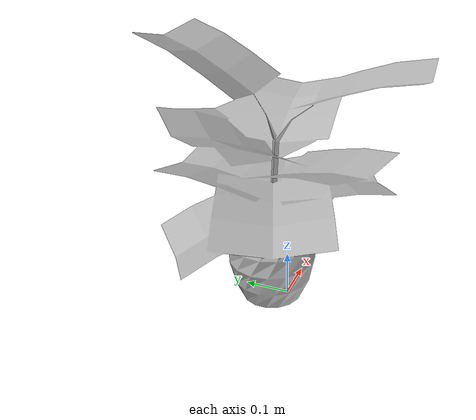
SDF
<?xml version='1.0'?>
<sdf version='1.4'>
  <model name='737'>
    <pose>0 0 0 0 0 0</pose>
    <static>true</static>
    <link name='link'>
      <collision name='collision'>
        <pose>0 0 0 0 0 0</pose>
        <geometry>
          <box>
            <size>0.495187 0.54313 2</size>
          </box>
        </geometry>
      </collision>
      <visual name='visual'>
        <pose>0 0 0 0 0 0</pose>
        <geometry>
          <mesh><uri>model://737/737.dae</uri></mesh>
        </geometry>
      </visual>
    </link>
  </model>
</sdf>
